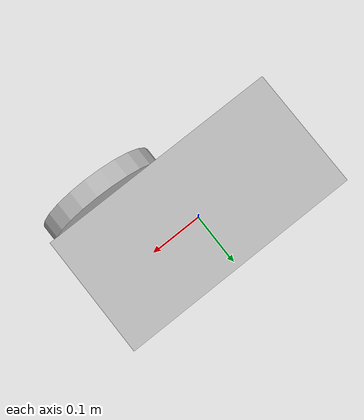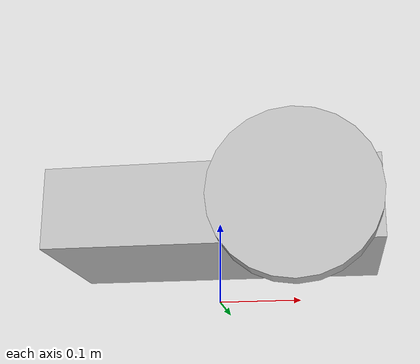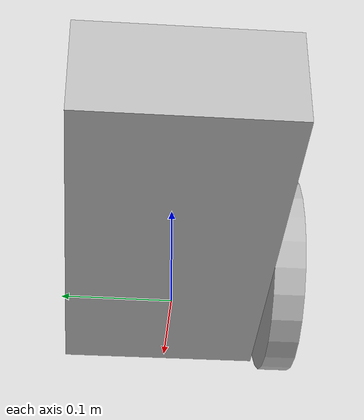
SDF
<?xml version='1.0'?>
      <sdf version='1.4'>
        <model name="artbot">
        <static>true</static>
          <link name='chassis'>
            <pose>0 0 .1 0 0 0</pose>

            <collision name='collision'>
              <geometry>
                <box>
                  <size>.4 .2 .1</size>
                </box>
              </geometry>
            </collision>

            <visual name='visual'>
              <geometry>
                <box>
                  <size>.4 .2 .1</size>
                </box>
              </geometry>
            </visual>
          </link>

          <link name="wheel">
            <pose>0.1 -0.115 0.1 0 1.5707 1.5705</pose>
            <collision name="collision">
              <geometry>
                <cylinder>
                  <radius>0.1</radius>
                  <length>0.03</length>
                </cylinder>
              </geometry>
            </collision>

            <visual name="visual">
              <geometry>
                <cylinder>
                  <radius>0.1</radius>
                  <length>0.03</length>
                </cylinder>
              </geometry>
            </visual>
          </link>

        </model>
      </sdf>
